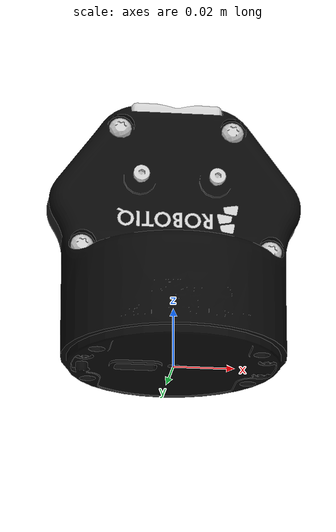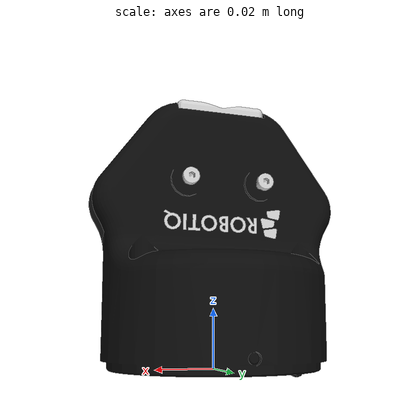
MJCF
<mujoco model="robotiq_base">
  <default>
    <default class="visual">
      <geom group="2" type="mesh" contype="0" conaffinity="0"/>
    </default>
    <default class="collision">
      <geom group="3" type="mesh"/>
    </default>
  </default>
  <asset>
    <material name="material_robotiq_base_0" specular="0.20000000000000004" shininess="1.0" rgba="0.03137255 0.03137255 0.03137255 1.0"/>
    <material name="material_robotiq_base_1" specular="0.20000000000000004" shininess="1.0" rgba="0.80000000 0.80000000 0.80000000 1.0"/>
    <mesh file="robotiq_base_0.obj"/>
    <mesh file="robotiq_base_1.obj"/>
  </asset>
  <worldbody>
    <body name="robotiq_base">
      <geom mesh="robotiq_base_0" material="material_robotiq_base_1" class="visual"/>
      <geom mesh="robotiq_base_1" material="material_robotiq_base_0" class="visual"/>
      <geom mesh="robotiq_base_0" class="collision"/>
      <geom mesh="robotiq_base_1" class="collision"/>
    </body>
  </worldbody>
</mujoco>
